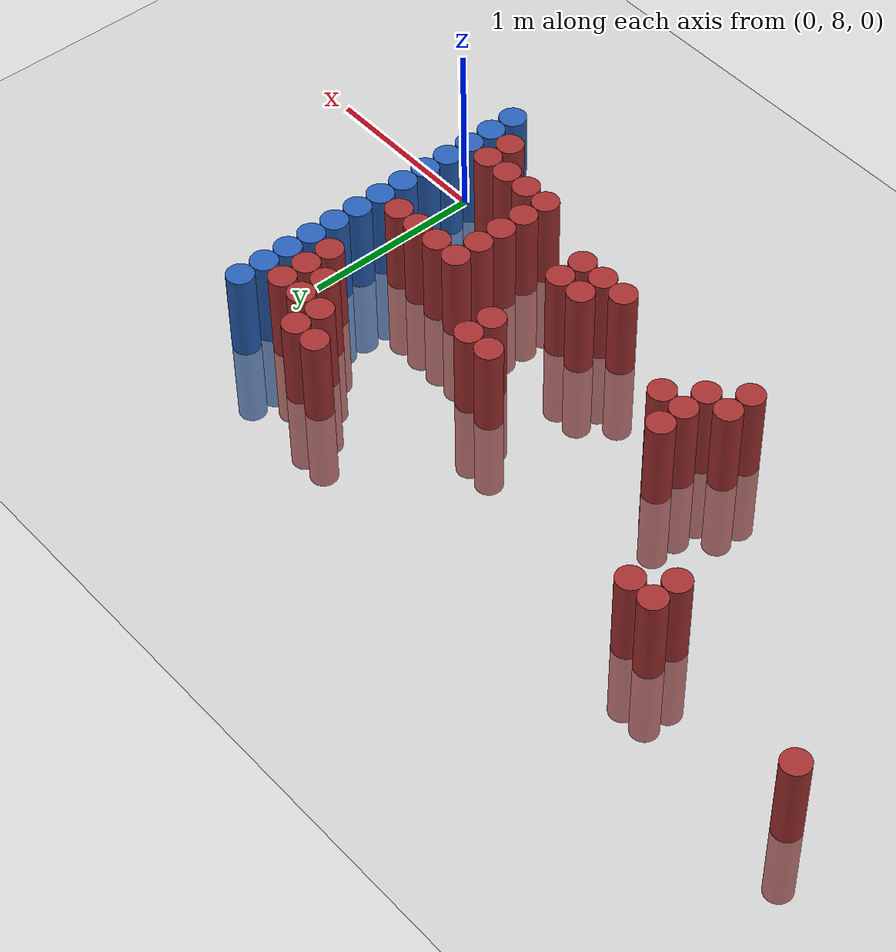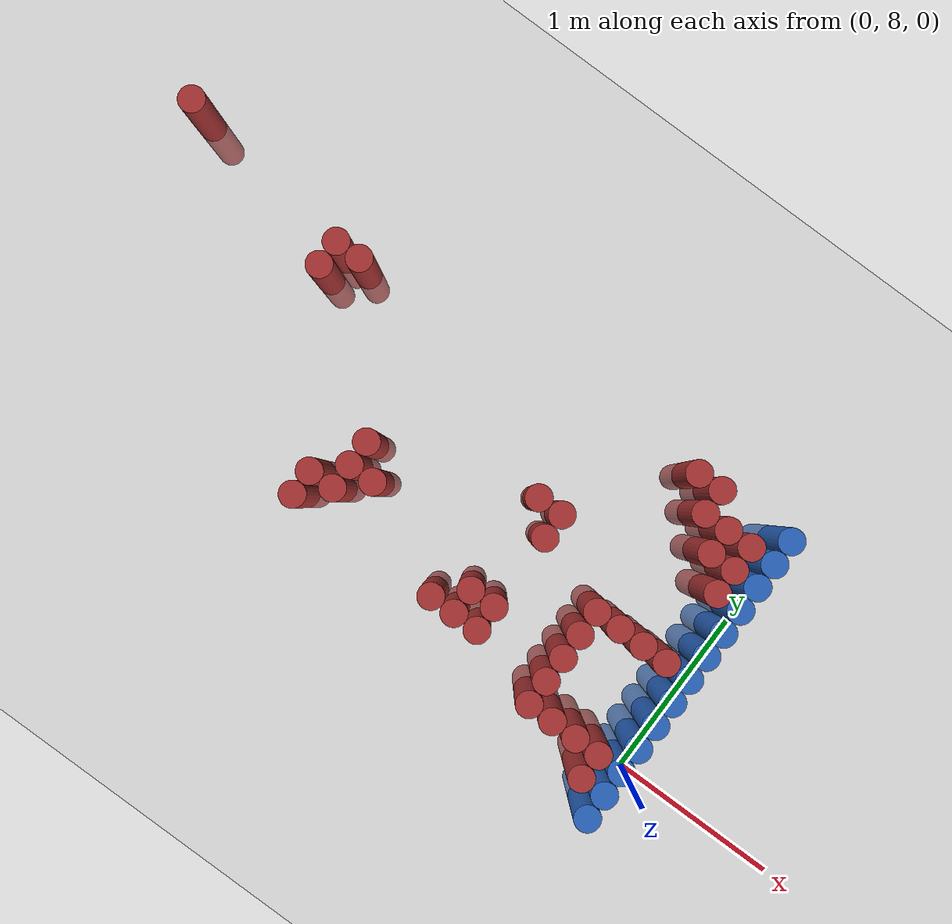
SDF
<sdf version="1.6">
 <world name="default">
  <model name="ground_plane">
   <static>1</static>
   <link name="link">
    <collision name="collision">
     <geometry><plane><normal>0 0 1</normal><size>100 100</size></plane></geometry>
     <surface><friction><ode><mu>100</mu><mu2>50</mu2></ode></friction></surface>
    </collision>
    <visual name="visual">
     <cast_shadows>0</cast_shadows>
     <geometry><plane><normal>0 0 1</normal><size>100 100</size></plane></geometry>
     <material>
      <script><uri>file://media/materials/scripts/gazebo.material</uri><name>Gazebo/Grey</name></script>
     </material>
    </visual>
   </link>
  </model>
  <model name="unit_cylinder_151">
   <static>1</static>
   <pose>-3.975000 9.525000 0.000000 0.000000 0.000000 0.000000</pose>
   <link name="link">
    <inertial>
     <mass>1</mass>
     <inertia><ixx>0.145833</ixx><ixy>0</ixy><ixz>0</ixz><iyy>0.145833</iyy><iyz>0</iyz><izz>0.125</izz></inertia>
    </inertial>
    <collision name="collision">
     <geometry><cylinder><radius>0.075000</radius><length>1</length></cylinder></geometry>
    </collision>
    <visual name="visual">
     <geometry><cylinder><radius>0.075000</radius><length>1</length></cylinder></geometry>
     <material>
      <ambient>0.648000 0.192000 0.192000 1</ambient>
      <diffuse>0.648000 0.192000 0.192000 1</diffuse>
     </material>
     <material>
      <script><name>Gazebo/Grey</name><uri>file://media/materials/scripts/gazebo.material</uri></script>
     </material>
    </visual>
   </link>
  </model>
  <model name="unit_cylinder_155">
   <static>1</static>
   <pose>-2.925000 9.225000 0.000000 0.000000 0.000000 0.000000</pose>
   <link name="link">
    <inertial>
     <mass>1</mass>
     <inertia><ixx>0.145833</ixx><ixy>0</ixy><ixz>0</ixz><iyy>0.145833</iyy><iyz>0</iyz><izz>0.125</izz></inertia>
    </inertial>
    <collision name="collision">
     <geometry><cylinder><radius>0.075000</radius><length>1</length></cylinder></geometry>
    </collision>
    <visual name="visual">
     <geometry><cylinder><radius>0.075000</radius><length>1</length></cylinder></geometry>
     <material>
      <ambient>0.648000 0.192000 0.192000 1</ambient>
      <diffuse>0.648000 0.192000 0.192000 1</diffuse>
     </material>
     <material>
      <script><name>Gazebo/Grey</name><uri>file://media/materials/scripts/gazebo.material</uri></script>
     </material>
    </visual>
   </link>
  </model>
  <model name="unit_cylinder_156">
   <static>1</static>
   <pose>-2.925000 9.375000 0.000000 0.000000 0.000000 0.000000</pose>
   <link name="link">
    <inertial>
     <mass>1</mass>
     <inertia><ixx>0.145833</ixx><ixy>0</ixy><ixz>0</ixz><iyy>0.145833</iyy><iyz>0</iyz><izz>0.125</izz></inertia>
    </inertial>
    <collision name="collision">
     <geometry><cylinder><radius>0.075000</radius><length>1</length></cylinder></geometry>
    </collision>
    <visual name="visual">
     <geometry><cylinder><radius>0.075000</radius><length>1</length></cylinder></geometry>
     <material>
      <ambient>0.648000 0.192000 0.192000 1</ambient>
      <diffuse>0.648000 0.192000 0.192000 1</diffuse>
     </material>
     <material>
      <script><name>Gazebo/Grey</name><uri>file://media/materials/scripts/gazebo.material</uri></script>
     </material>
    </visual>
   </link>
  </model>
  <model name="unit_cylinder_159">
   <static>1</static>
   <pose>-2.775000 9.375000 0.000000 0.000000 0.000000 0.000000</pose>
   <link name="link">
    <inertial>
     <mass>1</mass>
     <inertia><ixx>0.145833</ixx><ixy>0</ixy><ixz>0</ixz><iyy>0.145833</iyy><iyz>0</iyz><izz>0.125</izz></inertia>
    </inertial>
    <collision name="collision">
     <geometry><cylinder><radius>0.075000</radius><length>1</length></cylinder></geometry>
    </collision>
    <visual name="visual">
     <geometry><cylinder><radius>0.075000</radius><length>1</length></cylinder></geometry>
     <material>
      <ambient>0.648000 0.192000 0.192000 1</ambient>
      <diffuse>0.648000 0.192000 0.192000 1</diffuse>
     </material>
     <material>
      <script><name>Gazebo/Grey</name><uri>file://media/materials/scripts/gazebo.material</uri></script>
     </material>
    </visual>
   </link>
  </model>
  <model name="unit_cylinder_163">
   <static>1</static>
   <pose>-2.325000 8.175000 0.000000 0.000000 0.000000 0.000000</pose>
   <link name="link">
    <inertial>
     <mass>1</mass>
     <inertia><ixx>0.145833</ixx><ixy>0</ixy><ixz>0</ixz><iyy>0.145833</iyy><iyz>0</iyz><izz>0.125</izz></inertia>
    </inertial>
    <collision name="collision">
     <geometry><cylinder><radius>0.075000</radius><length>1</length></cylinder></geometry>
    </collision>
    <visual name="visual">
     <geometry><cylinder><radius>0.075000</radius><length>1</length></cylinder></geometry>
     <material>
      <ambient>0.648000 0.192000 0.192000 1</ambient>
      <diffuse>0.648000 0.192000 0.192000 1</diffuse>
     </material>
     <material>
      <script><name>Gazebo/Grey</name><uri>file://media/materials/scripts/gazebo.material</uri></script>
     </material>
    </visual>
   </link>
  </model>
  <model name="unit_cylinder_164">
   <static>1</static>
   <pose>-2.325000 8.325000 0.000000 0.000000 0.000000 0.000000</pose>
   <link name="link">
    <inertial>
     <mass>1</mass>
     <inertia><ixx>0.145833</ixx><ixy>0</ixy><ixz>0</ixz><iyy>0.145833</iyy><iyz>0</iyz><izz>0.125</izz></inertia>
    </inertial>
    <collision name="collision">
     <geometry><cylinder><radius>0.075000</radius><length>1</length></cylinder></geometry>
    </collision>
    <visual name="visual">
     <geometry><cylinder><radius>0.075000</radius><length>1</length></cylinder></geometry>
     <material>
      <ambient>0.648000 0.192000 0.192000 1</ambient>
      <diffuse>0.648000 0.192000 0.192000 1</diffuse>
     </material>
     <material>
      <script><name>Gazebo/Grey</name><uri>file://media/materials/scripts/gazebo.material</uri></script>
     </material>
    </visual>
   </link>
  </model>
  <model name="unit_cylinder_166">
   <static>1</static>
   <pose>-2.175000 8.325000 0.000000 0.000000 0.000000 0.000000</pose>
   <link name="link">
    <inertial>
     <mass>1</mass>
     <inertia><ixx>0.145833</ixx><ixy>0</ixy><ixz>0</ixz><iyy>0.145833</iyy><iyz>0</iyz><izz>0.125</izz></inertia>
    </inertial>
    <collision name="collision">
     <geometry><cylinder><radius>0.075000</radius><length>1</length></cylinder></geometry>
    </collision>
    <visual name="visual">
     <geometry><cylinder><radius>0.075000</radius><length>1</length></cylinder></geometry>
     <material>
      <ambient>0.648000 0.192000 0.192000 1</ambient>
      <diffuse>0.648000 0.192000 0.192000 1</diffuse>
     </material>
     <material>
      <script><name>Gazebo/Grey</name><uri>file://media/materials/scripts/gazebo.material</uri></script>
     </material>
    </visual>
   </link>
  </model>
  <model name="unit_cylinder_167">
   <static>1</static>
   <pose>-2.175000 8.475000 0.000000 0.000000 0.000000 0.000000</pose>
   <link name="link">
    <inertial>
     <mass>1</mass>
     <inertia><ixx>0.145833</ixx><ixy>0</ixy><ixz>0</ixz><iyy>0.145833</iyy><iyz>0</iyz><izz>0.125</izz></inertia>
    </inertial>
    <collision name="collision">
     <geometry><cylinder><radius>0.075000</radius><length>1</length></cylinder></geometry>
    </collision>
    <visual name="visual">
     <geometry><cylinder><radius>0.075000</radius><length>1</length></cylinder></geometry>
     <material>
      <ambient>0.648000 0.192000 0.192000 1</ambient>
      <diffuse>0.648000 0.192000 0.192000 1</diffuse>
     </material>
     <material>
      <script><name>Gazebo/Grey</name><uri>file://media/materials/scripts/gazebo.material</uri></script>
     </material>
    </visual>
   </link>
  </model>
  <model name="unit_cylinder_168">
   <static>1</static>
   <pose>-2.175000 8.625000 0.000000 0.000000 0.000000 0.000000</pose>
   <link name="link">
    <inertial>
     <mass>1</mass>
     <inertia><ixx>0.145833</ixx><ixy>0</ixy><ixz>0</ixz><iyy>0.145833</iyy><iyz>0</iyz><izz>0.125</izz></inertia>
    </inertial>
    <collision name="collision">
     <geometry><cylinder><radius>0.075000</radius><length>1</length></cylinder></geometry>
    </collision>
    <visual name="visual">
     <geometry><cylinder><radius>0.075000</radius><length>1</length></cylinder></geometry>
     <material>
      <ambient>0.648000 0.192000 0.192000 1</ambient>
      <diffuse>0.648000 0.192000 0.192000 1</diffuse>
     </material>
     <material>
      <script><name>Gazebo/Grey</name><uri>file://media/materials/scripts/gazebo.material</uri></script>
     </material>
    </visual>
   </link>
  </model>
  <model name="unit_cylinder_169">
   <static>1</static>
   <pose>-2.025000 8.475000 0.000000 0.000000 0.000000 0.000000</pose>
   <link name="link">
    <inertial>
     <mass>1</mass>
     <inertia><ixx>0.145833</ixx><ixy>0</ixy><ixz>0</ixz><iyy>0.145833</iyy><iyz>0</iyz><izz>0.125</izz></inertia>
    </inertial>
    <collision name="collision">
     <geometry><cylinder><radius>0.075000</radius><length>1</length></cylinder></geometry>
    </collision>
    <visual name="visual">
     <geometry><cylinder><radius>0.075000</radius><length>1</length></cylinder></geometry>
     <material>
      <ambient>0.648000 0.192000 0.192000 1</ambient>
      <diffuse>0.648000 0.192000 0.192000 1</diffuse>
     </material>
     <material>
      <script><name>Gazebo/Grey</name><uri>file://media/materials/scripts/gazebo.material</uri></script>
     </material>
    </visual>
   </link>
  </model>
  <model name="unit_cylinder_178">
   <static>1</static>
   <pose>-1.425000 8.175000 0.000000 0.000000 0.000000 0.000000</pose>
   <link name="link">
    <inertial>
     <mass>1</mass>
     <inertia><ixx>0.145833</ixx><ixy>0</ixy><ixz>0</ixz><iyy>0.145833</iyy><iyz>0</iyz><izz>0.125</izz></inertia>
    </inertial>
    <collision name="collision">
     <geometry><cylinder><radius>0.075000</radius><length>1</length></cylinder></geometry>
    </collision>
    <visual name="visual">
     <geometry><cylinder><radius>0.075000</radius><length>1</length></cylinder></geometry>
     <material>
      <ambient>0.648000 0.192000 0.192000 1</ambient>
      <diffuse>0.648000 0.192000 0.192000 1</diffuse>
     </material>
     <material>
      <script><name>Gazebo/Grey</name><uri>file://media/materials/scripts/gazebo.material</uri></script>
     </material>
    </visual>
   </link>
  </model>
  <model name="unit_cylinder_181">
   <static>1</static>
   <pose>-1.275000 8.175000 0.000000 0.000000 0.000000 0.000000</pose>
   <link name="link">
    <inertial>
     <mass>1</mass>
     <inertia><ixx>0.145833</ixx><ixy>0</ixy><ixz>0</ixz><iyy>0.145833</iyy><iyz>0</iyz><izz>0.125</izz></inertia>
    </inertial>
    <collision name="collision">
     <geometry><cylinder><radius>0.075000</radius><length>1</length></cylinder></geometry>
    </collision>
    <visual name="visual">
     <geometry><cylinder><radius>0.075000</radius><length>1</length></cylinder></geometry>
     <material>
      <ambient>0.648000 0.192000 0.192000 1</ambient>
      <diffuse>0.648000 0.192000 0.192000 1</diffuse>
     </material>
     <material>
      <script><name>Gazebo/Grey</name><uri>file://media/materials/scripts/gazebo.material</uri></script>
     </material>
    </visual>
   </link>
  </model>
  <model name="unit_cylinder_182">
   <static>1</static>
   <pose>-1.275000 8.325000 0.000000 0.000000 0.000000 0.000000</pose>
   <link name="link">
    <inertial>
     <mass>1</mass>
     <inertia><ixx>0.145833</ixx><ixy>0</ixy><ixz>0</ixz><iyy>0.145833</iyy><iyz>0</iyz><izz>0.125</izz></inertia>
    </inertial>
    <collision name="collision">
     <geometry><cylinder><radius>0.075000</radius><length>1</length></cylinder></geometry>
    </collision>
    <visual name="visual">
     <geometry><cylinder><radius>0.075000</radius><length>1</length></cylinder></geometry>
     <material>
      <ambient>0.648000 0.192000 0.192000 1</ambient>
      <diffuse>0.648000 0.192000 0.192000 1</diffuse>
     </material>
     <material>
      <script><name>Gazebo/Grey</name><uri>file://media/materials/scripts/gazebo.material</uri></script>
     </material>
    </visual>
   </link>
  </model>
  <model name="unit_cylinder_183">
   <static>1</static>
   <pose>-1.275000 8.925000 0.000000 0.000000 0.000000 0.000000</pose>
   <link name="link">
    <inertial>
     <mass>1</mass>
     <inertia><ixx>0.145833</ixx><ixy>0</ixy><ixz>0</ixz><iyy>0.145833</iyy><iyz>0</iyz><izz>0.125</izz></inertia>
    </inertial>
    <collision name="collision">
     <geometry><cylinder><radius>0.075000</radius><length>1</length></cylinder></geometry>
    </collision>
    <visual name="visual">
     <geometry><cylinder><radius>0.075000</radius><length>1</length></cylinder></geometry>
     <material>
      <ambient>0.648000 0.192000 0.192000 1</ambient>
      <diffuse>0.648000 0.192000 0.192000 1</diffuse>
     </material>
     <material>
      <script><name>Gazebo/Grey</name><uri>file://media/materials/scripts/gazebo.material</uri></script>
     </material>
    </visual>
   </link>
  </model>
  <model name="unit_cylinder_185">
   <static>1</static>
   <pose>-1.125000 8.175000 0.000000 0.000000 0.000000 0.000000</pose>
   <link name="link">
    <inertial>
     <mass>1</mass>
     <inertia><ixx>0.145833</ixx><ixy>0</ixy><ixz>0</ixz><iyy>0.145833</iyy><iyz>0</iyz><izz>0.125</izz></inertia>
    </inertial>
    <collision name="collision">
     <geometry><cylinder><radius>0.075000</radius><length>1</length></cylinder></geometry>
    </collision>
    <visual name="visual">
     <geometry><cylinder><radius>0.075000</radius><length>1</length></cylinder></geometry>
     <material>
      <ambient>0.648000 0.192000 0.192000 1</ambient>
      <diffuse>0.648000 0.192000 0.192000 1</diffuse>
     </material>
     <material>
      <script><name>Gazebo/Grey</name><uri>file://media/materials/scripts/gazebo.material</uri></script>
     </material>
    </visual>
   </link>
  </model>
  <model name="unit_cylinder_186">
   <static>1</static>
   <pose>-1.125000 8.325000 0.000000 0.000000 0.000000 0.000000</pose>
   <link name="link">
    <inertial>
     <mass>1</mass>
     <inertia><ixx>0.145833</ixx><ixy>0</ixy><ixz>0</ixz><iyy>0.145833</iyy><iyz>0</iyz><izz>0.125</izz></inertia>
    </inertial>
    <collision name="collision">
     <geometry><cylinder><radius>0.075000</radius><length>1</length></cylinder></geometry>
    </collision>
    <visual name="visual">
     <geometry><cylinder><radius>0.075000</radius><length>1</length></cylinder></geometry>
     <material>
      <ambient>0.648000 0.192000 0.192000 1</ambient>
      <diffuse>0.648000 0.192000 0.192000 1</diffuse>
     </material>
     <material>
      <script><name>Gazebo/Grey</name><uri>file://media/materials/scripts/gazebo.material</uri></script>
     </material>
    </visual>
   </link>
  </model>
  <model name="unit_cylinder_187">
   <static>1</static>
   <pose>-1.125000 8.775000 0.000000 0.000000 0.000000 0.000000</pose>
   <link name="link">
    <inertial>
     <mass>1</mass>
     <inertia><ixx>0.145833</ixx><ixy>0</ixy><ixz>0</ixz><iyy>0.145833</iyy><iyz>0</iyz><izz>0.125</izz></inertia>
    </inertial>
    <collision name="collision">
     <geometry><cylinder><radius>0.075000</radius><length>1</length></cylinder></geometry>
    </collision>
    <visual name="visual">
     <geometry><cylinder><radius>0.075000</radius><length>1</length></cylinder></geometry>
     <material>
      <ambient>0.648000 0.192000 0.192000 1</ambient>
      <diffuse>0.648000 0.192000 0.192000 1</diffuse>
     </material>
     <material>
      <script><name>Gazebo/Grey</name><uri>file://media/materials/scripts/gazebo.material</uri></script>
     </material>
    </visual>
   </link>
  </model>
  <model name="unit_cylinder_188">
   <static>1</static>
   <pose>-1.125000 8.925000 0.000000 0.000000 0.000000 0.000000</pose>
   <link name="link">
    <inertial>
     <mass>1</mass>
     <inertia><ixx>0.145833</ixx><ixy>0</ixy><ixz>0</ixz><iyy>0.145833</iyy><iyz>0</iyz><izz>0.125</izz></inertia>
    </inertial>
    <collision name="collision">
     <geometry><cylinder><radius>0.075000</radius><length>1</length></cylinder></geometry>
    </collision>
    <visual name="visual">
     <geometry><cylinder><radius>0.075000</radius><length>1</length></cylinder></geometry>
     <material>
      <ambient>0.648000 0.192000 0.192000 1</ambient>
      <diffuse>0.648000 0.192000 0.192000 1</diffuse>
     </material>
     <material>
      <script><name>Gazebo/Grey</name><uri>file://media/materials/scripts/gazebo.material</uri></script>
     </material>
    </visual>
   </link>
  </model>
  <model name="unit_cylinder_194">
   <static>1</static>
   <pose>-0.675000 8.025000 0.000000 0.000000 0.000000 0.000000</pose>
   <link name="link">
    <inertial>
     <mass>1</mass>
     <inertia><ixx>0.145833</ixx><ixy>0</ixy><ixz>0</ixz><iyy>0.145833</iyy><iyz>0</iyz><izz>0.125</izz></inertia>
    </inertial>
    <collision name="collision">
     <geometry><cylinder><radius>0.075000</radius><length>1</length></cylinder></geometry>
    </collision>
    <visual name="visual">
     <geometry><cylinder><radius>0.075000</radius><length>1</length></cylinder></geometry>
     <material>
      <ambient>0.648000 0.192000 0.192000 1</ambient>
      <diffuse>0.648000 0.192000 0.192000 1</diffuse>
     </material>
     <material>
      <script><name>Gazebo/Grey</name><uri>file://media/materials/scripts/gazebo.material</uri></script>
     </material>
    </visual>
   </link>
  </model>
  <model name="unit_cylinder_195">
   <static>1</static>
   <pose>-0.675000 8.175000 0.000000 0.000000 0.000000 0.000000</pose>
   <link name="link">
    <inertial>
     <mass>1</mass>
     <inertia><ixx>0.145833</ixx><ixy>0</ixy><ixz>0</ixz><iyy>0.145833</iyy><iyz>0</iyz><izz>0.125</izz></inertia>
    </inertial>
    <collision name="collision">
     <geometry><cylinder><radius>0.075000</radius><length>1</length></cylinder></geometry>
    </collision>
    <visual name="visual">
     <geometry><cylinder><radius>0.075000</radius><length>1</length></cylinder></geometry>
     <material>
      <ambient>0.648000 0.192000 0.192000 1</ambient>
      <diffuse>0.648000 0.192000 0.192000 1</diffuse>
     </material>
     <material>
      <script><name>Gazebo/Grey</name><uri>file://media/materials/scripts/gazebo.material</uri></script>
     </material>
    </visual>
   </link>
  </model>
  <model name="unit_cylinder_196">
   <static>1</static>
   <pose>-0.675000 8.325000 0.000000 0.000000 0.000000 0.000000</pose>
   <link name="link">
    <inertial>
     <mass>1</mass>
     <inertia><ixx>0.145833</ixx><ixy>0</ixy><ixz>0</ixz><iyy>0.145833</iyy><iyz>0</iyz><izz>0.125</izz></inertia>
    </inertial>
    <collision name="collision">
     <geometry><cylinder><radius>0.075000</radius><length>1</length></cylinder></geometry>
    </collision>
    <visual name="visual">
     <geometry><cylinder><radius>0.075000</radius><length>1</length></cylinder></geometry>
     <material>
      <ambient>0.648000 0.192000 0.192000 1</ambient>
      <diffuse>0.648000 0.192000 0.192000 1</diffuse>
     </material>
     <material>
      <script><name>Gazebo/Grey</name><uri>file://media/materials/scripts/gazebo.material</uri></script>
     </material>
    </visual>
   </link>
  </model>
  <model name="unit_cylinder_197">
   <static>1</static>
   <pose>-0.675000 8.475000 0.000000 0.000000 0.000000 0.000000</pose>
   <link name="link">
    <inertial>
     <mass>1</mass>
     <inertia><ixx>0.145833</ixx><ixy>0</ixy><ixz>0</ixz><iyy>0.145833</iyy><iyz>0</iyz><izz>0.125</izz></inertia>
    </inertial>
    <collision name="collision">
     <geometry><cylinder><radius>0.075000</radius><length>1</length></cylinder></geometry>
    </collision>
    <visual name="visual">
     <geometry><cylinder><radius>0.075000</radius><length>1</length></cylinder></geometry>
     <material>
      <ambient>0.648000 0.192000 0.192000 1</ambient>
      <diffuse>0.648000 0.192000 0.192000 1</diffuse>
     </material>
     <material>
      <script><name>Gazebo/Grey</name><uri>file://media/materials/scripts/gazebo.material</uri></script>
     </material>
    </visual>
   </link>
  </model>
  <model name="unit_cylinder_198">
   <static>1</static>
   <pose>-0.675000 8.625000 0.000000 0.000000 0.000000 0.000000</pose>
   <link name="link">
    <inertial>
     <mass>1</mass>
     <inertia><ixx>0.145833</ixx><ixy>0</ixy><ixz>0</ixz><iyy>0.145833</iyy><iyz>0</iyz><izz>0.125</izz></inertia>
    </inertial>
    <collision name="collision">
     <geometry><cylinder><radius>0.075000</radius><length>1</length></cylinder></geometry>
    </collision>
    <visual name="visual">
     <geometry><cylinder><radius>0.075000</radius><length>1</length></cylinder></geometry>
     <material>
      <ambient>0.648000 0.192000 0.192000 1</ambient>
      <diffuse>0.648000 0.192000 0.192000 1</diffuse>
     </material>
     <material>
      <script><name>Gazebo/Grey</name><uri>file://media/materials/scripts/gazebo.material</uri></script>
     </material>
    </visual>
   </link>
  </model>
  <model name="unit_cylinder_199">
   <static>1</static>
   <pose>-0.675000 9.525000 0.000000 0.000000 0.000000 0.000000</pose>
   <link name="link">
    <inertial>
     <mass>1</mass>
     <inertia><ixx>0.145833</ixx><ixy>0</ixy><ixz>0</ixz><iyy>0.145833</iyy><iyz>0</iyz><izz>0.125</izz></inertia>
    </inertial>
    <collision name="collision">
     <geometry><cylinder><radius>0.075000</radius><length>1</length></cylinder></geometry>
    </collision>
    <visual name="visual">
     <geometry><cylinder><radius>0.075000</radius><length>1</length></cylinder></geometry>
     <material>
      <ambient>0.648000 0.192000 0.192000 1</ambient>
      <diffuse>0.648000 0.192000 0.192000 1</diffuse>
     </material>
     <material>
      <script><name>Gazebo/Grey</name><uri>file://media/materials/scripts/gazebo.material</uri></script>
     </material>
    </visual>
   </link>
  </model>
  <model name="unit_cylinder_202">
   <static>1</static>
   <pose>-0.525000 8.025000 0.000000 0.000000 0.000000 0.000000</pose>
   <link name="link">
    <inertial>
     <mass>1</mass>
     <inertia><ixx>0.145833</ixx><ixy>0</ixy><ixz>0</ixz><iyy>0.145833</iyy><iyz>0</iyz><izz>0.125</izz></inertia>
    </inertial>
    <collision name="collision">
     <geometry><cylinder><radius>0.075000</radius><length>1</length></cylinder></geometry>
    </collision>
    <visual name="visual">
     <geometry><cylinder><radius>0.075000</radius><length>1</length></cylinder></geometry>
     <material>
      <ambient>0.648000 0.192000 0.192000 1</ambient>
      <diffuse>0.648000 0.192000 0.192000 1</diffuse>
     </material>
     <material>
      <script><name>Gazebo/Grey</name><uri>file://media/materials/scripts/gazebo.material</uri></script>
     </material>
    </visual>
   </link>
  </model>
  <model name="unit_cylinder_203">
   <static>1</static>
   <pose>-0.525000 8.625000 0.000000 0.000000 0.000000 0.000000</pose>
   <link name="link">
    <inertial>
     <mass>1</mass>
     <inertia><ixx>0.145833</ixx><ixy>0</ixy><ixz>0</ixz><iyy>0.145833</iyy><iyz>0</iyz><izz>0.125</izz></inertia>
    </inertial>
    <collision name="collision">
     <geometry><cylinder><radius>0.075000</radius><length>1</length></cylinder></geometry>
    </collision>
    <visual name="visual">
     <geometry><cylinder><radius>0.075000</radius><length>1</length></cylinder></geometry>
     <material>
      <ambient>0.648000 0.192000 0.192000 1</ambient>
      <diffuse>0.648000 0.192000 0.192000 1</diffuse>
     </material>
     <material>
      <script><name>Gazebo/Grey</name><uri>file://media/materials/scripts/gazebo.material</uri></script>
     </material>
    </visual>
   </link>
  </model>
  <model name="unit_cylinder_204">
   <static>1</static>
   <pose>-0.525000 9.375000 0.000000 0.000000 0.000000 0.000000</pose>
   <link name="link">
    <inertial>
     <mass>1</mass>
     <inertia><ixx>0.145833</ixx><ixy>0</ixy><ixz>0</ixz><iyy>0.145833</iyy><iyz>0</iyz><izz>0.125</izz></inertia>
    </inertial>
    <collision name="collision">
     <geometry><cylinder><radius>0.075000</radius><length>1</length></cylinder></geometry>
    </collision>
    <visual name="visual">
     <geometry><cylinder><radius>0.075000</radius><length>1</length></cylinder></geometry>
     <material>
      <ambient>0.648000 0.192000 0.192000 1</ambient>
      <diffuse>0.648000 0.192000 0.192000 1</diffuse>
     </material>
     <material>
      <script><name>Gazebo/Grey</name><uri>file://media/materials/scripts/gazebo.material</uri></script>
     </material>
    </visual>
   </link>
  </model>
  <model name="unit_cylinder_205">
   <static>1</static>
   <pose>-0.525000 9.525000 0.000000 0.000000 0.000000 0.000000</pose>
   <link name="link">
    <inertial>
     <mass>1</mass>
     <inertia><ixx>0.145833</ixx><ixy>0</ixy><ixz>0</ixz><iyy>0.145833</iyy><iyz>0</iyz><izz>0.125</izz></inertia>
    </inertial>
    <collision name="collision">
     <geometry><cylinder><radius>0.075000</radius><length>1</length></cylinder></geometry>
    </collision>
    <visual name="visual">
     <geometry><cylinder><radius>0.075000</radius><length>1</length></cylinder></geometry>
     <material>
      <ambient>0.648000 0.192000 0.192000 1</ambient>
      <diffuse>0.648000 0.192000 0.192000 1</diffuse>
     </material>
     <material>
      <script><name>Gazebo/Grey</name><uri>file://media/materials/scripts/gazebo.material</uri></script>
     </material>
    </visual>
   </link>
  </model>
  <model name="unit_cylinder_208">
   <static>1</static>
   <pose>-0.375000 8.025000 0.000000 0.000000 0.000000 0.000000</pose>
   <link name="link">
    <inertial>
     <mass>1</mass>
     <inertia><ixx>0.145833</ixx><ixy>0</ixy><ixz>0</ixz><iyy>0.145833</iyy><iyz>0</iyz><izz>0.125</izz></inertia>
    </inertial>
    <collision name="collision">
     <geometry><cylinder><radius>0.075000</radius><length>1</length></cylinder></geometry>
    </collision>
    <visual name="visual">
     <geometry><cylinder><radius>0.075000</radius><length>1</length></cylinder></geometry>
     <material>
      <ambient>0.648000 0.192000 0.192000 1</ambient>
      <diffuse>0.648000 0.192000 0.192000 1</diffuse>
     </material>
     <material>
      <script><name>Gazebo/Grey</name><uri>file://media/materials/scripts/gazebo.material</uri></script>
     </material>
    </visual>
   </link>
  </model>
  <model name="unit_cylinder_209">
   <static>1</static>
   <pose>-0.375000 8.625000 0.000000 0.000000 0.000000 0.000000</pose>
   <link name="link">
    <inertial>
     <mass>1</mass>
     <inertia><ixx>0.145833</ixx><ixy>0</ixy><ixz>0</ixz><iyy>0.145833</iyy><iyz>0</iyz><izz>0.125</izz></inertia>
    </inertial>
    <collision name="collision">
     <geometry><cylinder><radius>0.075000</radius><length>1</length></cylinder></geometry>
    </collision>
    <visual name="visual">
     <geometry><cylinder><radius>0.075000</radius><length>1</length></cylinder></geometry>
     <material>
      <ambient>0.648000 0.192000 0.192000 1</ambient>
      <diffuse>0.648000 0.192000 0.192000 1</diffuse>
     </material>
     <material>
      <script><name>Gazebo/Grey</name><uri>file://media/materials/scripts/gazebo.material</uri></script>
     </material>
    </visual>
   </link>
  </model>
  <model name="unit_cylinder_210">
   <static>1</static>
   <pose>-0.375000 9.225000 0.000000 0.000000 0.000000 0.000000</pose>
   <link name="link">
    <inertial>
     <mass>1</mass>
     <inertia><ixx>0.145833</ixx><ixy>0</ixy><ixz>0</ixz><iyy>0.145833</iyy><iyz>0</iyz><izz>0.125</izz></inertia>
    </inertial>
    <collision name="collision">
     <geometry><cylinder><radius>0.075000</radius><length>1</length></cylinder></geometry>
    </collision>
    <visual name="visual">
     <geometry><cylinder><radius>0.075000</radius><length>1</length></cylinder></geometry>
     <material>
      <ambient>0.648000 0.192000 0.192000 1</ambient>
      <diffuse>0.648000 0.192000 0.192000 1</diffuse>
     </material>
     <material>
      <script><name>Gazebo/Grey</name><uri>file://media/materials/scripts/gazebo.material</uri></script>
     </material>
    </visual>
   </link>
  </model>
  <model name="unit_cylinder_211">
   <static>1</static>
   <pose>-0.375000 9.375000 0.000000 0.000000 0.000000 0.000000</pose>
   <link name="link">
    <inertial>
     <mass>1</mass>
     <inertia><ixx>0.145833</ixx><ixy>0</ixy><ixz>0</ixz><iyy>0.145833</iyy><iyz>0</iyz><izz>0.125</izz></inertia>
    </inertial>
    <collision name="collision">
     <geometry><cylinder><radius>0.075000</radius><length>1</length></cylinder></geometry>
    </collision>
    <visual name="visual">
     <geometry><cylinder><radius>0.075000</radius><length>1</length></cylinder></geometry>
     <material>
      <ambient>0.648000 0.192000 0.192000 1</ambient>
      <diffuse>0.648000 0.192000 0.192000 1</diffuse>
     </material>
     <material>
      <script><name>Gazebo/Grey</name><uri>file://media/materials/scripts/gazebo.material</uri></script>
     </material>
    </visual>
   </link>
  </model>
  <model name="unit_cylinder_219">
   <static>1</static>
   <pose>-0.225000 7.875000 0.000000 0.000000 0.000000 0.000000</pose>
   <link name="link">
    <inertial>
     <mass>1</mass>
     <inertia><ixx>0.145833</ixx><ixy>0</ixy><ixz>0</ixz><iyy>0.145833</iyy><iyz>0</iyz><izz>0.125</izz></inertia>
    </inertial>
    <collision name="collision">
     <geometry><cylinder><radius>0.075000</radius><length>1</length></cylinder></geometry>
    </collision>
    <visual name="visual">
     <geometry><cylinder><radius>0.075000</radius><length>1</length></cylinder></geometry>
     <material>
      <ambient>0.648000 0.192000 0.192000 1</ambient>
      <diffuse>0.648000 0.192000 0.192000 1</diffuse>
     </material>
     <material>
      <script><name>Gazebo/Grey</name><uri>file://media/materials/scripts/gazebo.material</uri></script>
     </material>
    </visual>
   </link>
  </model>
  <model name="unit_cylinder_220">
   <static>1</static>
   <pose>-0.225000 8.025000 0.000000 0.000000 0.000000 0.000000</pose>
   <link name="link">
    <inertial>
     <mass>1</mass>
     <inertia><ixx>0.145833</ixx><ixy>0</ixy><ixz>0</ixz><iyy>0.145833</iyy><iyz>0</iyz><izz>0.125</izz></inertia>
    </inertial>
    <collision name="collision">
     <geometry><cylinder><radius>0.075000</radius><length>1</length></cylinder></geometry>
    </collision>
    <visual name="visual">
     <geometry><cylinder><radius>0.075000</radius><length>1</length></cylinder></geometry>
     <material>
      <ambient>0.648000 0.192000 0.192000 1</ambient>
      <diffuse>0.648000 0.192000 0.192000 1</diffuse>
     </material>
     <material>
      <script><name>Gazebo/Grey</name><uri>file://media/materials/scripts/gazebo.material</uri></script>
     </material>
    </visual>
   </link>
  </model>
  <model name="unit_cylinder_221">
   <static>1</static>
   <pose>-0.225000 8.625000 0.000000 0.000000 0.000000 0.000000</pose>
   <link name="link">
    <inertial>
     <mass>1</mass>
     <inertia><ixx>0.145833</ixx><ixy>0</ixy><ixz>0</ixz><iyy>0.145833</iyy><iyz>0</iyz><izz>0.125</izz></inertia>
    </inertial>
    <collision name="collision">
     <geometry><cylinder><radius>0.075000</radius><length>1</length></cylinder></geometry>
    </collision>
    <visual name="visual">
     <geometry><cylinder><radius>0.075000</radius><length>1</length></cylinder></geometry>
     <material>
      <ambient>0.648000 0.192000 0.192000 1</ambient>
      <diffuse>0.648000 0.192000 0.192000 1</diffuse>
     </material>
     <material>
      <script><name>Gazebo/Grey</name><uri>file://media/materials/scripts/gazebo.material</uri></script>
     </material>
    </visual>
   </link>
  </model>
  <model name="unit_cylinder_222">
   <static>1</static>
   <pose>-0.225000 9.075000 0.000000 0.000000 0.000000 0.000000</pose>
   <link name="link">
    <inertial>
     <mass>1</mass>
     <inertia><ixx>0.145833</ixx><ixy>0</ixy><ixz>0</ixz><iyy>0.145833</iyy><iyz>0</iyz><izz>0.125</izz></inertia>
    </inertial>
    <collision name="collision">
     <geometry><cylinder><radius>0.075000</radius><length>1</length></cylinder></geometry>
    </collision>
    <visual name="visual">
     <geometry><cylinder><radius>0.075000</radius><length>1</length></cylinder></geometry>
     <material>
      <ambient>0.648000 0.192000 0.192000 1</ambient>
      <diffuse>0.648000 0.192000 0.192000 1</diffuse>
     </material>
     <material>
      <script><name>Gazebo/Grey</name><uri>file://media/materials/scripts/gazebo.material</uri></script>
     </material>
    </visual>
   </link>
  </model>
  <model name="unit_cylinder_223">
   <static>1</static>
   <pose>-0.225000 9.225000 0.000000 0.000000 0.000000 0.000000</pose>
   <link name="link">
    <inertial>
     <mass>1</mass>
     <inertia><ixx>0.145833</ixx><ixy>0</ixy><ixz>0</ixz><iyy>0.145833</iyy><iyz>0</iyz><izz>0.125</izz></inertia>
    </inertial>
    <collision name="collision">
     <geometry><cylinder><radius>0.075000</radius><length>1</length></cylinder></geometry>
    </collision>
    <visual name="visual">
     <geometry><cylinder><radius>0.075000</radius><length>1</length></cylinder></geometry>
     <material>
      <ambient>0.648000 0.192000 0.192000 1</ambient>
      <diffuse>0.648000 0.192000 0.192000 1</diffuse>
     </material>
     <material>
      <script><name>Gazebo/Grey</name><uri>file://media/materials/scripts/gazebo.material</uri></script>
     </material>
    </visual>
   </link>
  </model>
  <model name="unit_cylinder_224">
   <static>1</static>
   <pose>-0.225000 9.375000 0.000000 0.000000 0.000000 0.000000</pose>
   <link name="link">
    <inertial>
     <mass>1</mass>
     <inertia><ixx>0.145833</ixx><ixy>0</ixy><ixz>0</ixz><iyy>0.145833</iyy><iyz>0</iyz><izz>0.125</izz></inertia>
    </inertial>
    <collision name="collision">
     <geometry><cylinder><radius>0.075000</radius><length>1</length></cylinder></geometry>
    </collision>
    <visual name="visual">
     <geometry><cylinder><radius>0.075000</radius><length>1</length></cylinder></geometry>
     <material>
      <ambient>0.648000 0.192000 0.192000 1</ambient>
      <diffuse>0.648000 0.192000 0.192000 1</diffuse>
     </material>
     <material>
      <script><name>Gazebo/Grey</name><uri>file://media/materials/scripts/gazebo.material</uri></script>
     </material>
    </visual>
   </link>
  </model>
  <model name="unit_cylinder_242">
   <static>1</static>
   <pose>-0.075000 7.725000 0.000000 0.000000 0.000000 0.000000</pose>
   <link name="link">
    <inertial>
     <mass>1</mass>
     <inertia><ixx>0.145833</ixx><ixy>0</ixy><ixz>0</ixz><iyy>0.145833</iyy><iyz>0</iyz><izz>0.125</izz></inertia>
    </inertial>
    <collision name="collision">
     <geometry><cylinder><radius>0.075000</radius><length>1</length></cylinder></geometry>
    </collision>
    <visual name="visual">
     <geometry><cylinder><radius>0.075000</radius><length>1</length></cylinder></geometry>
     <material>
      <ambient>0.152000 0.379000 0.720000 1</ambient>
      <diffuse>0.152000 0.379000 0.720000 1</diffuse>
     </material>
     <material>
      <script><name>Gazebo/Grey</name><uri>file://media/materials/scripts/gazebo.material</uri></script>
     </material>
    </visual>
   </link>
  </model>
  <model name="unit_cylinder_243">
   <static>1</static>
   <pose>-0.075000 7.875000 0.000000 0.000000 0.000000 0.000000</pose>
   <link name="link">
    <inertial>
     <mass>1</mass>
     <inertia><ixx>0.145833</ixx><ixy>0</ixy><ixz>0</ixz><iyy>0.145833</iyy><iyz>0</iyz><izz>0.125</izz></inertia>
    </inertial>
    <collision name="collision">
     <geometry><cylinder><radius>0.075000</radius><length>1</length></cylinder></geometry>
    </collision>
    <visual name="visual">
     <geometry><cylinder><radius>0.075000</radius><length>1</length></cylinder></geometry>
     <material>
      <ambient>0.152000 0.379000 0.720000 1</ambient>
      <diffuse>0.152000 0.379000 0.720000 1</diffuse>
     </material>
     <material>
      <script><name>Gazebo/Grey</name><uri>file://media/materials/scripts/gazebo.material</uri></script>
     </material>
    </visual>
   </link>
  </model>
  <model name="unit_cylinder_244">
   <static>1</static>
   <pose>-0.075000 8.025000 0.000000 0.000000 0.000000 0.000000</pose>
   <link name="link">
    <inertial>
     <mass>1</mass>
     <inertia><ixx>0.145833</ixx><ixy>0</ixy><ixz>0</ixz><iyy>0.145833</iyy><iyz>0</iyz><izz>0.125</izz></inertia>
    </inertial>
    <collision name="collision">
     <geometry><cylinder><radius>0.075000</radius><length>1</length></cylinder></geometry>
    </collision>
    <visual name="visual">
     <geometry><cylinder><radius>0.075000</radius><length>1</length></cylinder></geometry>
     <material>
      <ambient>0.152000 0.379000 0.720000 1</ambient>
      <diffuse>0.152000 0.379000 0.720000 1</diffuse>
     </material>
     <material>
      <script><name>Gazebo/Grey</name><uri>file://media/materials/scripts/gazebo.material</uri></script>
     </material>
    </visual>
   </link>
  </model>
  <model name="unit_cylinder_245">
   <static>1</static>
   <pose>-0.075000 8.175000 0.000000 0.000000 0.000000 0.000000</pose>
   <link name="link">
    <inertial>
     <mass>1</mass>
     <inertia><ixx>0.145833</ixx><ixy>0</ixy><ixz>0</ixz><iyy>0.145833</iyy><iyz>0</iyz><izz>0.125</izz></inertia>
    </inertial>
    <collision name="collision">
     <geometry><cylinder><radius>0.075000</radius><length>1</length></cylinder></geometry>
    </collision>
    <visual name="visual">
     <geometry><cylinder><radius>0.075000</radius><length>1</length></cylinder></geometry>
     <material>
      <ambient>0.152000 0.379000 0.720000 1</ambient>
      <diffuse>0.152000 0.379000 0.720000 1</diffuse>
     </material>
     <material>
      <script><name>Gazebo/Grey</name><uri>file://media/materials/scripts/gazebo.material</uri></script>
     </material>
    </visual>
   </link>
  </model>
  <model name="unit_cylinder_246">
   <static>1</static>
   <pose>-0.075000 8.325000 0.000000 0.000000 0.000000 0.000000</pose>
   <link name="link">
    <inertial>
     <mass>1</mass>
     <inertia><ixx>0.145833</ixx><ixy>0</ixy><ixz>0</ixz><iyy>0.145833</iyy><iyz>0</iyz><izz>0.125</izz></inertia>
    </inertial>
    <collision name="collision">
     <geometry><cylinder><radius>0.075000</radius><length>1</length></cylinder></geometry>
    </collision>
    <visual name="visual">
     <geometry><cylinder><radius>0.075000</radius><length>1</length></cylinder></geometry>
     <material>
      <ambient>0.152000 0.379000 0.720000 1</ambient>
      <diffuse>0.152000 0.379000 0.720000 1</diffuse>
     </material>
     <material>
      <script><name>Gazebo/Grey</name><uri>file://media/materials/scripts/gazebo.material</uri></script>
     </material>
    </visual>
   </link>
  </model>
  <model name="unit_cylinder_247">
   <static>1</static>
   <pose>-0.075000 8.475000 0.000000 0.000000 0.000000 0.000000</pose>
   <link name="link">
    <inertial>
     <mass>1</mass>
     <inertia><ixx>0.145833</ixx><ixy>0</ixy><ixz>0</ixz><iyy>0.145833</iyy><iyz>0</iyz><izz>0.125</izz></inertia>
    </inertial>
    <collision name="collision">
     <geometry><cylinder><radius>0.075000</radius><length>1</length></cylinder></geometry>
    </collision>
    <visual name="visual">
     <geometry><cylinder><radius>0.075000</radius><length>1</length></cylinder></geometry>
     <material>
      <ambient>0.152000 0.379000 0.720000 1</ambient>
      <diffuse>0.152000 0.379000 0.720000 1</diffuse>
     </material>
     <material>
      <script><name>Gazebo/Grey</name><uri>file://media/materials/scripts/gazebo.material</uri></script>
     </material>
    </visual>
   </link>
  </model>
  <model name="unit_cylinder_248">
   <static>1</static>
   <pose>-0.075000 8.625000 0.000000 0.000000 0.000000 0.000000</pose>
   <link name="link">
    <inertial>
     <mass>1</mass>
     <inertia><ixx>0.145833</ixx><ixy>0</ixy><ixz>0</ixz><iyy>0.145833</iyy><iyz>0</iyz><izz>0.125</izz></inertia>
    </inertial>
    <collision name="collision">
     <geometry><cylinder><radius>0.075000</radius><length>1</length></cylinder></geometry>
    </collision>
    <visual name="visual">
     <geometry><cylinder><radius>0.075000</radius><length>1</length></cylinder></geometry>
     <material>
      <ambient>0.152000 0.379000 0.720000 1</ambient>
      <diffuse>0.152000 0.379000 0.720000 1</diffuse>
     </material>
     <material>
      <script><name>Gazebo/Grey</name><uri>file://media/materials/scripts/gazebo.material</uri></script>
     </material>
    </visual>
   </link>
  </model>
  <model name="unit_cylinder_249">
   <static>1</static>
   <pose>-0.075000 8.775000 0.000000 0.000000 0.000000 0.000000</pose>
   <link name="link">
    <inertial>
     <mass>1</mass>
     <inertia><ixx>0.145833</ixx><ixy>0</ixy><ixz>0</ixz><iyy>0.145833</iyy><iyz>0</iyz><izz>0.125</izz></inertia>
    </inertial>
    <collision name="collision">
     <geometry><cylinder><radius>0.075000</radius><length>1</length></cylinder></geometry>
    </collision>
    <visual name="visual">
     <geometry><cylinder><radius>0.075000</radius><length>1</length></cylinder></geometry>
     <material>
      <ambient>0.152000 0.379000 0.720000 1</ambient>
      <diffuse>0.152000 0.379000 0.720000 1</diffuse>
     </material>
     <material>
      <script><name>Gazebo/Grey</name><uri>file://media/materials/scripts/gazebo.material</uri></script>
     </material>
    </visual>
   </link>
  </model>
  <model name="unit_cylinder_250">
   <static>1</static>
   <pose>-0.075000 8.925000 0.000000 0.000000 0.000000 0.000000</pose>
   <link name="link">
    <inertial>
     <mass>1</mass>
     <inertia><ixx>0.145833</ixx><ixy>0</ixy><ixz>0</ixz><iyy>0.145833</iyy><iyz>0</iyz><izz>0.125</izz></inertia>
    </inertial>
    <collision name="collision">
     <geometry><cylinder><radius>0.075000</radius><length>1</length></cylinder></geometry>
    </collision>
    <visual name="visual">
     <geometry><cylinder><radius>0.075000</radius><length>1</length></cylinder></geometry>
     <material>
      <ambient>0.152000 0.379000 0.720000 1</ambient>
      <diffuse>0.152000 0.379000 0.720000 1</diffuse>
     </material>
     <material>
      <script><name>Gazebo/Grey</name><uri>file://media/materials/scripts/gazebo.material</uri></script>
     </material>
    </visual>
   </link>
  </model>
  <model name="unit_cylinder_251">
   <static>1</static>
   <pose>-0.075000 9.075000 0.000000 0.000000 0.000000 0.000000</pose>
   <link name="link">
    <inertial>
     <mass>1</mass>
     <inertia><ixx>0.145833</ixx><ixy>0</ixy><ixz>0</ixz><iyy>0.145833</iyy><iyz>0</iyz><izz>0.125</izz></inertia>
    </inertial>
    <collision name="collision">
     <geometry><cylinder><radius>0.075000</radius><length>1</length></cylinder></geometry>
    </collision>
    <visual name="visual">
     <geometry><cylinder><radius>0.075000</radius><length>1</length></cylinder></geometry>
     <material>
      <ambient>0.152000 0.379000 0.720000 1</ambient>
      <diffuse>0.152000 0.379000 0.720000 1</diffuse>
     </material>
     <material>
      <script><name>Gazebo/Grey</name><uri>file://media/materials/scripts/gazebo.material</uri></script>
     </material>
    </visual>
   </link>
  </model>
  <model name="unit_cylinder_252">
   <static>1</static>
   <pose>-0.075000 9.225000 0.000000 0.000000 0.000000 0.000000</pose>
   <link name="link">
    <inertial>
     <mass>1</mass>
     <inertia><ixx>0.145833</ixx><ixy>0</ixy><ixz>0</ixz><iyy>0.145833</iyy><iyz>0</iyz><izz>0.125</izz></inertia>
    </inertial>
    <collision name="collision">
     <geometry><cylinder><radius>0.075000</radius><length>1</length></cylinder></geometry>
    </collision>
    <visual name="visual">
     <geometry><cylinder><radius>0.075000</radius><length>1</length></cylinder></geometry>
     <material>
      <ambient>0.152000 0.379000 0.720000 1</ambient>
      <diffuse>0.152000 0.379000 0.720000 1</diffuse>
     </material>
     <material>
      <script><name>Gazebo/Grey</name><uri>file://media/materials/scripts/gazebo.material</uri></script>
     </material>
    </visual>
   </link>
  </model>
  <model name="unit_cylinder_253">
   <static>1</static>
   <pose>-0.075000 9.375000 0.000000 0.000000 0.000000 0.000000</pose>
   <link name="link">
    <inertial>
     <mass>1</mass>
     <inertia><ixx>0.145833</ixx><ixy>0</ixy><ixz>0</ixz><iyy>0.145833</iyy><iyz>0</iyz><izz>0.125</izz></inertia>
    </inertial>
    <collision name="collision">
     <geometry><cylinder><radius>0.075000</radius><length>1</length></cylinder></geometry>
    </collision>
    <visual name="visual">
     <geometry><cylinder><radius>0.075000</radius><length>1</length></cylinder></geometry>
     <material>
      <ambient>0.152000 0.379000 0.720000 1</ambient>
      <diffuse>0.152000 0.379000 0.720000 1</diffuse>
     </material>
     <material>
      <script><name>Gazebo/Grey</name><uri>file://media/materials/scripts/gazebo.material</uri></script>
     </material>
    </visual>
   </link>
  </model>
  <model name="unit_cylinder_254">
   <static>1</static>
   <pose>-0.075000 9.525000 0.000000 0.000000 0.000000 0.000000</pose>
   <link name="link">
    <inertial>
     <mass>1</mass>
     <inertia><ixx>0.145833</ixx><ixy>0</ixy><ixz>0</ixz><iyy>0.145833</iyy><iyz>0</iyz><izz>0.125</izz></inertia>
    </inertial>
    <collision name="collision">
     <geometry><cylinder><radius>0.075000</radius><length>1</length></cylinder></geometry>
    </collision>
    <visual name="visual">
     <geometry><cylinder><radius>0.075000</radius><length>1</length></cylinder></geometry>
     <material>
      <ambient>0.152000 0.379000 0.720000 1</ambient>
      <diffuse>0.152000 0.379000 0.720000 1</diffuse>
     </material>
     <material>
      <script><name>Gazebo/Grey</name><uri>file://media/materials/scripts/gazebo.material</uri></script>
     </material>
    </visual>
   </link>
  </model>
 </world>
</sdf>
